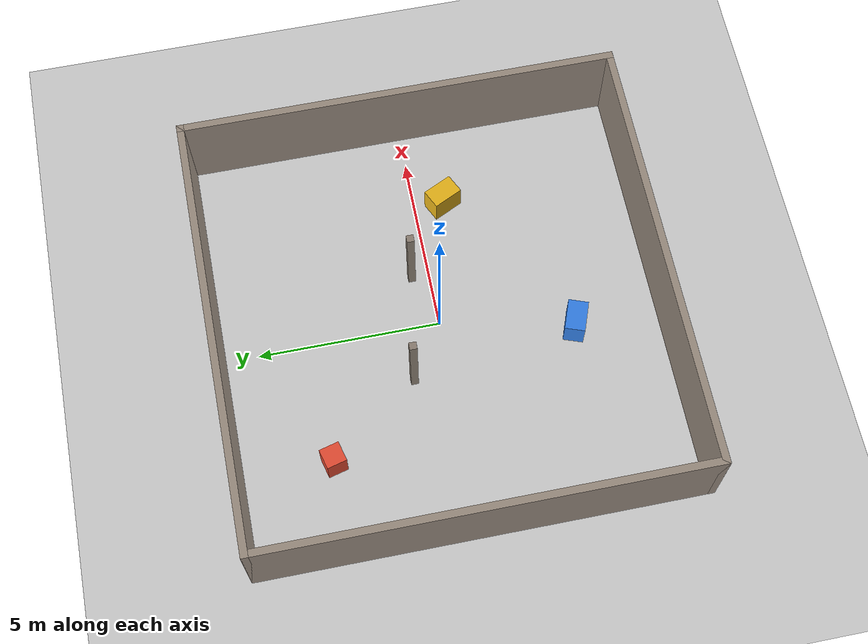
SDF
<?xml version="1.0" ?>

<sdf version="1.9">
  <world name="leo_exploration_world">

    <!-- ═══════════════════════════════════════════════════════════════
         Physics & plugins
    ═══════════════════════════════════════════════════════════════════ -->
    <physics name="1ms" type="ignored">
      <max_step_size>0.001</max_step_size>
      <real_time_factor>1.0</real_time_factor>
    </physics>

    <plugin filename="gz-sim-physics-system"
            name="gz::sim::systems::Physics"/>
    <plugin filename="gz-sim-user-commands-system"
            name="gz::sim::systems::UserCommands"/>
    <plugin filename="gz-sim-scene-broadcaster-system"
            name="gz::sim::systems::SceneBroadcaster"/>
    <plugin filename="gz-sim-sensors-system"
            name="gz::sim::systems::Sensors">
      <render_engine>ogre2</render_engine>
    </plugin>
    <plugin filename="gz-sim-imu-system"
            name="gz::sim::systems::Imu"/>
    <plugin filename="gz-sim-contact-system"
            name="gz::sim::systems::Contact"/>

    <!-- ═══════════════════════════════════════════════════════════════
         Lighting
    ═══════════════════════════════════════════════════════════════════ -->
    <light name="sun" type="directional">
      <cast_shadows>true</cast_shadows>
      <pose>0 0 10 0 0 0</pose>
      <diffuse>0.8 0.8 0.8 1</diffuse>
      <specular>0.2 0.2 0.2 1</specular>
      <attenuation>
        <range>1000</range>
        <constant>0.9</constant>
        <linear>0.01</linear>
        <quadratic>0.001</quadratic>
      </attenuation>
      <direction>-0.5 0.1 -0.9</direction>
    </light>

    <!-- ═══════════════════════════════════════════════════════════════
         Ground plane
    ═══════════════════════════════════════════════════════════════════ -->
    <model name="ground_plane">
      <static>true</static>
      <link name="link">
        <collision name="collision">
          <geometry>
            <plane><normal>0 0 1</normal><size>40 40</size></plane>
          </geometry>
        </collision>
        <visual name="visual">
          <geometry>
            <plane><normal>0 0 1</normal><size>40 40</size></plane>
          </geometry>
          <material>
            <ambient>0.8 0.8 0.8 1</ambient>
            <diffuse>0.8 0.8 0.8 1</diffuse>
          </material>
        </visual>
      </link>
    </model>

     <!-- North wall  y=+6.0 -->
     <model name="wall_N">
      <static>true</static>
      <pose>0 6.0 1.25 0 0 0</pose>
      <link name="link">
        <collision name="c"><geometry><box><size>12.2 0.2 2.5</size></box></geometry></collision>
        <visual name="v">
          <geometry><box><size>12.2 0.2 2.5</size></box></geometry>
          <material><ambient>0.6 0.55 0.5 1</ambient><diffuse>0.6 0.55 0.5 1</diffuse></material>
        </visual>
      </link>
    </model>

    <!-- South wall  y=-6.0 -->
    <model name="wall_S">
      <static>true</static>
      <pose>0 -6.0 1.25 0 0 0</pose>
      <link name="link">
        <collision name="c"><geometry><box><size>12.2 0.2 2.5</size></box></geometry></collision>
        <visual name="v">
          <geometry><box><size>12.2 0.2 2.5</size></box></geometry>
          <material><ambient>0.6 0.55 0.5 1</ambient><diffuse>0.6 0.55 0.5 1</diffuse></material>
        </visual>
      </link>
    </model>

    <!-- East wall  x=+6.0 -->
    <model name="wall_E">
      <static>true</static>
      <pose>6.0 0 1.25 0 0 0</pose>
      <link name="link">
        <collision name="c"><geometry><box><size>0.2 12.2 2.5</size></box></geometry></collision>
        <visual name="v">
          <geometry><box><size>0.2 12.2 2.5</size></box></geometry>
          <material><ambient>0.6 0.55 0.5 1</ambient><diffuse>0.6 0.55 0.5 1</diffuse></material>
        </visual>
      </link>
    </model>

    <!-- West wall  x=-6.0 -->
    <model name="wall_W">
      <static>true</static>
      <pose>-6.0 0 1.25 0 0 0</pose>
      <link name="link">
        <collision name="c"><geometry><box><size>0.2 12.2 2.5</size></box></geometry></collision>
        <visual name="v">
          <geometry><box><size>0.2 12.2 2.5</size></box></geometry>
          <material><ambient>0.6 0.55 0.5 1</ambient><diffuse>0.6 0.55 0.5 1</diffuse></material>
        </visual>
      </link>
    </model>

    <!-- Vertical divider -->
    <model name="divider_V_right">
      <static>true</static>
      <pose>1.5 0.5 1.25 0 0 0</pose>
      <link name="link">
        <collision name="c"><geometry><box><size>0.2 0.2 2.5</size></box></geometry></collision>
        <visual name="v">
          <geometry><box><size>0.2 0.2 2.5</size></box></geometry>
          <material><ambient>0.55 0.5 0.45 1</ambient><diffuse>0.55 0.5 0.45 1</diffuse></material>
        </visual>
      </link>
    </model>

    <!-- Horizontal divider -->
    <model name="divider_H_top">
      <static>true</static>
      <pose>-1.5 1.0 1.25 0 0 0</pose>
      <link name="link">
        <collision name="c"><geometry><box><size>0.2 0.2 2.5</size></box></geometry></collision>
        <visual name="v">
          <geometry><box><size>0.2 0.2 2.5</size></box></geometry>
          <material><ambient>0.55 0.5 0.45 1</ambient><diffuse>0.55 0.5 0.45 1</diffuse></material>
        </visual>
      </link>
    </model>

    <model name="perimeter_box_nw">
      <static>true</static>
      <pose>-3.4 3.5 0.4 0 0 0.25</pose>
      <link name="link">
        <collision name="c"><geometry><box><size>0.55 0.55 0.8</size></box></geometry></collision>
        <visual name="v">
          <geometry><box><size>0.55 0.55 0.8</size></box></geometry>
          <material><ambient>0.9 0.3 0.2 1</ambient><diffuse>0.9 0.3 0.2 1</diffuse></material>
        </visual>
      </link>
    </model>

    <model name="perimeter_box_e">
      <static>true</static>
      <pose>3.6 -0.8 0.4 0 0 0.45</pose>
      <link name="link">
        <collision name="c"><geometry><box><size>0.55 0.85 0.8</size></box></geometry></collision>
        <visual name="v">
          <geometry><box><size>0.55 0.85 0.8</size></box></geometry>
          <material><ambient>0.9 0.7 0.1 1</ambient><diffuse>0.9 0.7 0.1 1</diffuse></material>
        </visual>
      </link>
    </model>

    <model name="perimeter_box_s">
      <static>true</static>
      <pose>-0.8 -3.6 0.4 0 0 -0.35</pose>
      <link name="link">
        <collision name="c"><geometry><box><size>0.85 0.55 0.8</size></box></geometry></collision>
        <visual name="v">
          <geometry><box><size>0.85 0.55 0.8</size></box></geometry>
          <material><ambient>0.2 0.5 0.9 1</ambient><diffuse>0.2 0.5 0.9 1</diffuse></material>
        </visual>
      </link>
    </model>

  </world>
</sdf>
